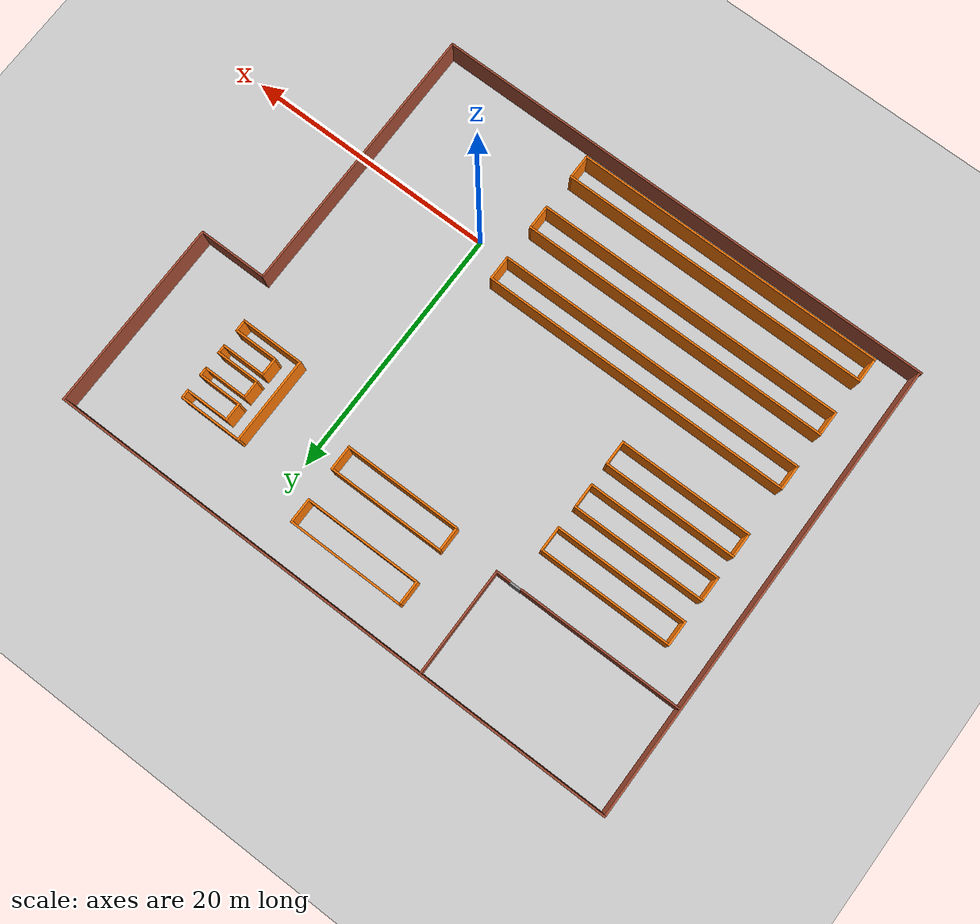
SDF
<sdf version="1.6">
 <world name="default">
  <light name="sun" type="directional">
   <pose>0 0 10 0 -0 0</pose>
   <diffuse>0.8 0.8 0.8 1</diffuse>
   <specular>0.2 0.2 0.2 1</specular>
   <attenuation>
    <range>1000</range>
    <constant>0.9</constant>
    <linear>0.01</linear>
    <quadratic>0.001</quadratic>
   </attenuation>
   <direction>-0.5 0.1 -0.9</direction>
  </light>
  <model name="ground_plane">
   <static>1</static>
   <link name="link">
    <collision name="collision">
     <geometry><plane><normal>0 0 1</normal><size>100 100</size></plane></geometry>
     <surface>
      <contact><collide_bitmask>65535</collide_bitmask></contact>
      <friction><ode><mu>100</mu><mu2>50</mu2></ode></friction>
     </surface>
    </collision>
    <visual name="visual">
     <cast_shadows>0</cast_shadows>
     <geometry><plane><normal>0 0 1</normal><size>100 100</size></plane></geometry>
     <material>
      <script><uri>file://media/materials/scripts/gazebo.material</uri><name>Gazebo/Grey</name></script>
     </material>
    </visual>
   </link>
  </model>
  <gravity>0 0 -9.8</gravity>
  <magnetic_field>6e-06 2.3e-05 -4.2e-05</magnetic_field>
  <atmosphere type="adiabatic"/>
  <physics name="default_physics" default="0" type="ode">
   <max_step_size>0.001</max_step_size>
   <real_time_factor>1</real_time_factor>
   <real_time_update_rate>1000</real_time_update_rate>
  </physics>
  <scene><ambient>0.4 0.4 0.4 1</ambient><background>0.7 0.7 0.7 1</background><shadows>1</shadows></scene>
  <audio><device>default</device></audio>
  <spherical_coordinates>
   <surface_model>EARTH_WGS84</surface_model>
   <latitude_deg>0</latitude_deg>
   <longitude_deg>0</longitude_deg>
   <elevation>0</elevation>
   <heading_deg>0</heading_deg>
  </spherical_coordinates>
  <model name="si_amr_factory">
   <pose>-7.31107 8.19607 0 0 -0 0</pose>
   <link name="Door_0">
    <collision name="Door_0_Collision">
     <geometry><box><size>0.9 0.17 2</size></box></geometry>
     <pose>0 0 1 0 -0 0</pose>
    </collision>
    <visual name="Door_0_Visual">
     <pose>0 0 1 0 -0 0</pose>
     <geometry><box><size>0.9 0.17 2</size></box></geometry>
     <material>
      <script><uri>file://media/materials/scripts/gazebo.material</uri><name>Gazebo/Grey</name></script>
     </material>
    </visual>
    <pose>-9.26953 9.88213 0 0 -0 0</pose>
   </link>
   <link name="Wall_11">
    <collision name="Wall_11_Collision">
     <geometry><box><size>40.25 0.15 2.5</size></box></geometry>
     <pose>0 0 1.25 0 -0 0</pose>
    </collision>
    <visual name="Wall_11_Visual">
     <pose>0 0 1.25 0 -0 0</pose>
     <geometry><box><size>40.25 0.15 2.5</size></box></geometry>
     <material>
      <script><uri>file://media/materials/scripts/gazebo.material</uri><name>Gazebo/Bricks</name></script>
      <ambient>1 1 1 1</ambient>
     </material>
     <meta><layer>0</layer></meta>
    </visual>
    <pose>-2.675 -18.228 0 0 -0 0</pose>
   </link>
   <link name="Wall_12">
    <collision name="Wall_12_Collision">
     <geometry><box><size>21.75 0.15 2.5</size></box></geometry>
     <pose>0 0 1.25 0 -0 0</pose>
    </collision>
    <visual name="Wall_12_Visual">
     <pose>0 0 1.25 0 -0 0</pose>
     <geometry><box><size>21.75 0.15 2.5</size></box></geometry>
     <material>
      <script><uri>file://media/materials/scripts/gazebo.material</uri><name>Gazebo/Bricks</name></script>
      <ambient>1 1 1 1</ambient>
     </material>
     <meta><layer>0</layer></meta>
    </visual>
    <pose>17.375 -7.42803 0 0 -0 1.5708</pose>
   </link>
   <link name="Wall_13">
    <collision name="Wall_13_Collision">
     <geometry><box><size>5.5 0.15 2.5</size></box></geometry>
     <pose>0 0 1.25 0 -0 0</pose>
    </collision>
    <visual name="Wall_13_Visual">
     <pose>0 0 1.25 0 -0 0</pose>
     <geometry><box><size>5.5 0.15 2.5</size></box></geometry>
     <material>
      <script><uri>file://media/materials/scripts/gazebo.material</uri><name>Gazebo/Bricks</name></script>
      <ambient>1 1 1 1</ambient>
     </material>
     <meta><layer>0</layer></meta>
    </visual>
    <pose>20.05 3.37197 0 0 -0 0</pose>
   </link>
   <link name="Wall_14">
    <collision name="Wall_14_Collision">
     <geometry><box><size>15 0.15 2.5</size></box></geometry>
     <pose>0 0 1.25 0 -0 0</pose>
    </collision>
    <visual name="Wall_14_Visual">
     <pose>0 0 1.25 0 -0 0</pose>
     <geometry><box><size>15 0.15 2.5</size></box></geometry>
     <material>
      <script><uri>file://media/materials/scripts/gazebo.material</uri><name>Gazebo/Bricks</name></script>
      <ambient>1 1 1 1</ambient>
     </material>
     <meta><layer>0</layer></meta>
    </visual>
    <pose>22.725 10.797 0 0 -0 1.5708</pose>
   </link>
   <link name="Wall_15">
    <collision name="Wall_15_Collision">
     <geometry><box><size>45.5 0.15 2.5</size></box></geometry>
     <pose>0 0 1.25 0 -0 0</pose>
    </collision>
    <visual name="Wall_15_Visual">
     <pose>0 0 1.25 0 -0 0</pose>
     <geometry><box><size>45.5 0.15 2.5</size></box></geometry>
     <material>
      <script><uri>file://media/materials/scripts/gazebo.material</uri><name>Gazebo/Bricks</name></script>
      <ambient>1 1 1 1</ambient>
     </material>
     <meta><layer>0</layer></meta>
    </visual>
    <pose>0.05 18.222 0 0 -0 3.14159</pose>
   </link>
   <link name="Wall_16">
    <collision name="Wall_16_Collision">
     <geometry><box><size>36.5 0.15 2.5</size></box></geometry>
     <pose>0 0 1.25 0 -0 0</pose>
    </collision>
    <visual name="Wall_16_Visual">
     <pose>0 0 1.25 0 -0 0</pose>
     <geometry><box><size>36.5 0.15 2.5</size></box></geometry>
     <material>
      <script><uri>file://media/materials/scripts/gazebo.material</uri><name>Gazebo/Bricks</name></script>
      <ambient>1 1 1 1</ambient>
     </material>
     <meta><layer>0</layer></meta>
    </visual>
    <pose>-22.625 0.046968 0 0 -0 -1.5708</pose>
   </link>
   <link name="Wall_18">
    <collision name="Wall_18_Collision">
     <geometry><box><size>24.5 0.15 2.5</size></box></geometry>
     <pose>0 0 1.25 0 -0 0</pose>
    </collision>
    <visual name="Wall_18_Visual">
     <pose>0 0 1.25 0 -0 0</pose>
     <geometry><box><size>24.5 0.15 2.5</size></box></geometry>
     <material>
      <script><uri>file://media/materials/scripts/gazebo.material</uri><name>Gazebo/Grey</name></script>
      <ambient>0.996078 0.47451 0.0196078 1</ambient>
     </material>
     <meta><layer>0</layer></meta>
    </visual>
    <pose>-7.49549 -17.1298 0 0 -0 0</pose>
   </link>
   <link name="Wall_19">
    <collision name="Wall_19_Collision">
     <geometry><box><size>2 0.15 2.5</size></box></geometry>
     <pose>0 0 1.25 0 -0 0</pose>
    </collision>
    <visual name="Wall_19_Visual">
     <pose>0 0 1.25 0 -0 0</pose>
     <geometry><box><size>2 0.15 2.5</size></box></geometry>
     <material>
      <script><uri>file://media/materials/scripts/gazebo.material</uri><name>Gazebo/Grey</name></script>
      <ambient>0.996078 0.47451 0.0196078 1</ambient>
     </material>
     <meta><layer>0</layer></meta>
    </visual>
    <pose>4.67951 -16.2048 0 0 -0 1.5708</pose>
   </link>
   <link name="Wall_23">
    <collision name="Wall_23_Collision">
     <geometry><box><size>24.5 0.15 2.5</size></box></geometry>
     <pose>0 0 1.25 0 -0 0</pose>
    </collision>
    <visual name="Wall_23_Visual">
     <pose>0 0 1.25 0 -0 0</pose>
     <geometry><box><size>24.5 0.15 2.5</size></box></geometry>
     <material>
      <script><uri>file://media/materials/scripts/gazebo.material</uri><name>Gazebo/Grey</name></script>
      <ambient>0.996078 0.47451 0.0196078 1</ambient>
     </material>
     <meta><layer>0</layer></meta>
    </visual>
    <pose>-7.49549 -15.2798 0 0 -0 3.14159</pose>
   </link>
   <link name="Wall_24">
    <collision name="Wall_24_Collision">
     <geometry><box><size>2 0.15 2.5</size></box></geometry>
     <pose>0 0 1.25 0 -0 0</pose>
    </collision>
    <visual name="Wall_24_Visual">
     <pose>0 0 1.25 0 -0 0</pose>
     <geometry><box><size>2 0.15 2.5</size></box></geometry>
     <material>
      <script><uri>file://media/materials/scripts/gazebo.material</uri><name>Gazebo/Grey</name></script>
      <ambient>0.996078 0.47451 0.0196078 1</ambient>
     </material>
     <meta><layer>0</layer></meta>
    </visual>
    <pose>-19.6705 -16.2048 0 0 -0 -1.5708</pose>
   </link>
   <link name="Wall_26">
    <collision name="Wall_26_Collision">
     <geometry><box><size>24.5 0.15 2.5</size></box></geometry>
     <pose>0 0 1.25 0 -0 0</pose>
    </collision>
    <visual name="Wall_26_Visual">
     <pose>0 0 1.25 0 -0 0</pose>
     <geometry><box><size>24.5 0.15 2.5</size></box></geometry>
     <material>
      <script><uri>file://media/materials/scripts/gazebo.material</uri><name>Gazebo/Grey</name></script>
      <ambient>0.996078 0.47451 0.0196078 1</ambient>
     </material>
     <meta><layer>0</layer></meta>
    </visual>
    <pose>-7.44652 -12.4509 0 0 -0 0</pose>
   </link>
   <link name="Wall_27">
    <collision name="Wall_27_Collision">
     <geometry><box><size>2 0.15 2.5</size></box></geometry>
     <pose>0 0 1.25 0 -0 0</pose>
    </collision>
    <visual name="Wall_27_Visual">
     <pose>0 0 1.25 0 -0 0</pose>
     <geometry><box><size>2 0.15 2.5</size></box></geometry>
     <material>
      <script><uri>file://media/materials/scripts/gazebo.material</uri><name>Gazebo/Grey</name></script>
      <ambient>0.996078 0.47451 0.0196078 1</ambient>
     </material>
     <meta><layer>0</layer></meta>
    </visual>
    <pose>4.72848 -11.5259 0 0 -0 1.5708</pose>
   </link>
   <link name="Wall_28">
    <collision name="Wall_28_Collision">
     <geometry><box><size>24.5 0.15 2.5</size></box></geometry>
     <pose>0 0 1.25 0 -0 0</pose>
    </collision>
    <visual name="Wall_28_Visual">
     <pose>0 0 1.25 0 -0 0</pose>
     <geometry><box><size>24.5 0.15 2.5</size></box></geometry>
     <material>
      <script><uri>file://media/materials/scripts/gazebo.material</uri><name>Gazebo/Grey</name></script>
      <ambient>0.996078 0.47451 0.0196078 1</ambient>
     </material>
     <meta><layer>0</layer></meta>
    </visual>
    <pose>-7.44652 -10.6009 0 0 -0 3.14159</pose>
   </link>
   <link name="Wall_29">
    <collision name="Wall_29_Collision">
     <geometry><box><size>2 0.15 2.5</size></box></geometry>
     <pose>0 0 1.25 0 -0 0</pose>
    </collision>
    <visual name="Wall_29_Visual">
     <pose>0 0 1.25 0 -0 0</pose>
     <geometry><box><size>2 0.15 2.5</size></box></geometry>
     <material>
      <script><uri>file://media/materials/scripts/gazebo.material</uri><name>Gazebo/Grey</name></script>
      <ambient>0.996078 0.47451 0.0196078 1</ambient>
     </material>
     <meta><layer>0</layer></meta>
    </visual>
    <pose>-19.6215 -11.5259 0 0 -0 -1.5708</pose>
   </link>
   <link name="Wall_31">
    <collision name="Wall_31_Collision">
     <geometry><box><size>24.5 0.15 2.5</size></box></geometry>
     <pose>0 0 1.25 0 -0 0</pose>
    </collision>
    <visual name="Wall_31_Visual">
     <pose>0 0 1.25 0 -0 0</pose>
     <geometry><box><size>24.5 0.15 2.5</size></box></geometry>
     <material>
      <script><uri>file://media/materials/scripts/gazebo.material</uri><name>Gazebo/Grey</name></script>
      <ambient>0.996078 0.47451 0.0196078 1</ambient>
     </material>
     <meta><layer>0</layer></meta>
    </visual>
    <pose>-7.46965 -7.87105 0 0 -0 0</pose>
   </link>
   <link name="Wall_32">
    <collision name="Wall_32_Collision">
     <geometry><box><size>2 0.15 2.5</size></box></geometry>
     <pose>0 0 1.25 0 -0 0</pose>
    </collision>
    <visual name="Wall_32_Visual">
     <pose>0 0 1.25 0 -0 0</pose>
     <geometry><box><size>2 0.15 2.5</size></box></geometry>
     <material>
      <script><uri>file://media/materials/scripts/gazebo.material</uri><name>Gazebo/Grey</name></script>
      <ambient>0.996078 0.47451 0.0196078 1</ambient>
     </material>
     <meta><layer>0</layer></meta>
    </visual>
    <pose>4.70535 -6.94605 0 0 -0 1.5708</pose>
   </link>
   <link name="Wall_33">
    <collision name="Wall_33_Collision">
     <geometry><box><size>24.5 0.15 2.5</size></box></geometry>
     <pose>0 0 1.25 0 -0 0</pose>
    </collision>
    <visual name="Wall_33_Visual">
     <pose>0 0 1.25 0 -0 0</pose>
     <geometry><box><size>24.5 0.15 2.5</size></box></geometry>
     <material>
      <script><uri>file://media/materials/scripts/gazebo.material</uri><name>Gazebo/Grey</name></script>
      <ambient>0.996078 0.47451 0.0196078 1</ambient>
     </material>
     <meta><layer>0</layer></meta>
    </visual>
    <pose>-7.46965 -6.02105 0 0 -0 3.14159</pose>
   </link>
   <link name="Wall_34">
    <collision name="Wall_34_Collision">
     <geometry><box><size>2 0.15 2.5</size></box></geometry>
     <pose>0 0 1.25 0 -0 0</pose>
    </collision>
    <visual name="Wall_34_Visual">
     <pose>0 0 1.25 0 -0 0</pose>
     <geometry><box><size>2 0.15 2.5</size></box></geometry>
     <material>
      <script><uri>file://media/materials/scripts/gazebo.material</uri><name>Gazebo/Grey</name></script>
      <ambient>0.996078 0.47451 0.0196078 1</ambient>
     </material>
     <meta><layer>0</layer></meta>
    </visual>
    <pose>-19.6446 -6.94605 0 0 -0 -1.5708</pose>
   </link>
   <link name="Wall_36">
    <collision name="Wall_36_Collision">
     <geometry><box><size>10.5 0.15 2.5</size></box></geometry>
     <pose>0 0 1.25 0 -0 0</pose>
    </collision>
    <visual name="Wall_36_Visual">
     <pose>0 0 1.25 0 -0 0</pose>
     <geometry><box><size>10.5 0.15 2.5</size></box></geometry>
     <material>
      <script><uri>file://media/materials/scripts/gazebo.material</uri><name>Gazebo/Grey</name></script>
      <ambient>0.996078 0.47451 0.0196078 1</ambient>
     </material>
     <meta><layer>0</layer></meta>
    </visual>
    <pose>-14.4928 1.42746 0 0 -0 0</pose>
   </link>
   <link name="Wall_37">
    <collision name="Wall_37_Collision">
     <geometry><box><size>2 0.15 2.5</size></box></geometry>
     <pose>0 0 1.25 0 -0 0</pose>
    </collision>
    <visual name="Wall_37_Visual">
     <pose>0 0 1.25 0 -0 0</pose>
     <geometry><box><size>2 0.15 2.5</size></box></geometry>
     <material>
      <script><uri>file://media/materials/scripts/gazebo.material</uri><name>Gazebo/Grey</name></script>
      <ambient>0.996078 0.47451 0.0196078 1</ambient>
     </material>
     <meta><layer>0</layer></meta>
    </visual>
    <pose>-9.31778 2.35246 0 0 -0 1.5708</pose>
   </link>
   <link name="Wall_38">
    <collision name="Wall_38_Collision">
     <geometry><box><size>10.5 0.15 2.5</size></box></geometry>
     <pose>0 0 1.25 0 -0 0</pose>
    </collision>
    <visual name="Wall_38_Visual">
     <pose>0 0 1.25 0 -0 0</pose>
     <geometry><box><size>10.5 0.15 2.5</size></box></geometry>
     <material>
      <script><uri>file://media/materials/scripts/gazebo.material</uri><name>Gazebo/Grey</name></script>
      <ambient>0.996078 0.47451 0.0196078 1</ambient>
     </material>
     <meta><layer>0</layer></meta>
    </visual>
    <pose>-14.4928 3.27746 0 0 -0 3.14159</pose>
   </link>
   <link name="Wall_39">
    <collision name="Wall_39_Collision">
     <geometry><box><size>2 0.15 2.5</size></box></geometry>
     <pose>0 0 1.25 0 -0 0</pose>
    </collision>
    <visual name="Wall_39_Visual">
     <pose>0 0 1.25 0 -0 0</pose>
     <geometry><box><size>2 0.15 2.5</size></box></geometry>
     <material>
      <script><uri>file://media/materials/scripts/gazebo.material</uri><name>Gazebo/Grey</name></script>
      <ambient>0.996078 0.47451 0.0196078 1</ambient>
     </material>
     <meta><layer>0</layer></meta>
    </visual>
    <pose>-19.6678 2.35246 0 0 -0 -1.5708</pose>
   </link>
   <link name="Wall_42">
    <collision name="Wall_42_Collision">
     <geometry><box><size>10.5 0.15 2.5</size></box></geometry>
     <pose>0 0 1.25 0 -0 0</pose>
    </collision>
    <visual name="Wall_42_Visual">
     <pose>0 0 1.25 0 -0 0</pose>
     <geometry><box><size>10.5 0.15 2.5</size></box></geometry>
     <material>
      <script><uri>file://media/materials/scripts/gazebo.material</uri><name>Gazebo/Grey</name></script>
      <ambient>0.996078 0.47451 0.0196078 1</ambient>
     </material>
     <meta><layer>0</layer></meta>
    </visual>
    <pose>-14.4696 -2.18092 0 0 -0 0</pose>
   </link>
   <link name="Wall_43">
    <collision name="Wall_43_Collision">
     <geometry><box><size>2 0.15 2.5</size></box></geometry>
     <pose>0 0 1.25 0 -0 0</pose>
    </collision>
    <visual name="Wall_43_Visual">
     <pose>0 0 1.25 0 -0 0</pose>
     <geometry><box><size>2 0.15 2.5</size></box></geometry>
     <material>
      <script><uri>file://media/materials/scripts/gazebo.material</uri><name>Gazebo/Grey</name></script>
      <ambient>0.996078 0.47451 0.0196078 1</ambient>
     </material>
     <meta><layer>0</layer></meta>
    </visual>
    <pose>-9.29465 -1.25592 0 0 -0 1.5708</pose>
   </link>
   <link name="Wall_44">
    <collision name="Wall_44_Collision">
     <geometry><box><size>10.5 0.15 2.5</size></box></geometry>
     <pose>0 0 1.25 0 -0 0</pose>
    </collision>
    <visual name="Wall_44_Visual">
     <pose>0 0 1.25 0 -0 0</pose>
     <geometry><box><size>10.5 0.15 2.5</size></box></geometry>
     <material>
      <script><uri>file://media/materials/scripts/gazebo.material</uri><name>Gazebo/Grey</name></script>
      <ambient>0.996078 0.47451 0.0196078 1</ambient>
     </material>
     <meta><layer>0</layer></meta>
    </visual>
    <pose>-14.4696 -0.330918 0 0 -0 3.14159</pose>
   </link>
   <link name="Wall_45">
    <collision name="Wall_45_Collision">
     <geometry><box><size>2 0.15 2.5</size></box></geometry>
     <pose>0 0 1.25 0 -0 0</pose>
    </collision>
    <visual name="Wall_45_Visual">
     <pose>0 0 1.25 0 -0 0</pose>
     <geometry><box><size>2 0.15 2.5</size></box></geometry>
     <material>
      <script><uri>file://media/materials/scripts/gazebo.material</uri><name>Gazebo/Grey</name></script>
      <ambient>0.996078 0.47451 0.0196078 1</ambient>
     </material>
     <meta><layer>0</layer></meta>
    </visual>
    <pose>-19.6446 -1.25592 0 0 -0 -1.5708</pose>
   </link>
   <link name="Wall_48">
    <collision name="Wall_48_Collision">
     <geometry><box><size>10.5 0.15 2.5</size></box></geometry>
     <pose>0 0 1.25 0 -0 0</pose>
    </collision>
    <visual name="Wall_48_Visual">
     <pose>0 0 1.25 0 -0 0</pose>
     <geometry><box><size>10.5 0.15 2.5</size></box></geometry>
     <material>
      <script><uri>file://media/materials/scripts/gazebo.material</uri><name>Gazebo/Grey</name></script>
      <ambient>0.996078 0.47451 0.0196078 1</ambient>
     </material>
     <meta><layer>0</layer></meta>
    </visual>
    <pose>-14.4234 5.08209 0 0 -0 0</pose>
   </link>
   <link name="Wall_49">
    <collision name="Wall_49_Collision">
     <geometry><box><size>2 0.15 2.5</size></box></geometry>
     <pose>0 0 1.25 0 -0 0</pose>
    </collision>
    <visual name="Wall_49_Visual">
     <pose>0 0 1.25 0 -0 0</pose>
     <geometry><box><size>2 0.15 2.5</size></box></geometry>
     <material>
      <script><uri>file://media/materials/scripts/gazebo.material</uri><name>Gazebo/Grey</name></script>
      <ambient>0.996078 0.47451 0.0196078 1</ambient>
     </material>
     <meta><layer>0</layer></meta>
    </visual>
    <pose>-9.24839 6.00709 0 0 -0 1.5708</pose>
   </link>
   <link name="Wall_50">
    <collision name="Wall_50_Collision">
     <geometry><box><size>10.5 0.15 2.5</size></box></geometry>
     <pose>0 0 1.25 0 -0 0</pose>
    </collision>
    <visual name="Wall_50_Visual">
     <pose>0 0 1.25 0 -0 0</pose>
     <geometry><box><size>10.5 0.15 2.5</size></box></geometry>
     <material>
      <script><uri>file://media/materials/scripts/gazebo.material</uri><name>Gazebo/Grey</name></script>
      <ambient>0.996078 0.47451 0.0196078 1</ambient>
     </material>
     <meta><layer>0</layer></meta>
    </visual>
    <pose>-14.4234 6.93209 0 0 -0 3.14159</pose>
   </link>
   <link name="Wall_51">
    <collision name="Wall_51_Collision">
     <geometry><box><size>2 0.15 2.5</size></box></geometry>
     <pose>0 0 1.25 0 -0 0</pose>
    </collision>
    <visual name="Wall_51_Visual">
     <pose>0 0 1.25 0 -0 0</pose>
     <geometry><box><size>2 0.15 2.5</size></box></geometry>
     <material>
      <script><uri>file://media/materials/scripts/gazebo.material</uri><name>Gazebo/Grey</name></script>
      <ambient>0.996078 0.47451 0.0196078 1</ambient>
     </material>
     <meta><layer>0</layer></meta>
    </visual>
    <pose>-19.5984 6.00709 0 0 -0 -1.5708</pose>
   </link>
   <link name="Wall_53">
    <collision name="Wall_53_Collision">
     <geometry><box><size>9.25 0.15 2.5</size></box></geometry>
     <pose>0 0 1.25 0 -0 0</pose>
    </collision>
    <visual name="Wall_53_Visual">
     <pose>0 0 1.25 0 -0 0</pose>
     <geometry><box><size>9.25 0.15 2.5</size></box></geometry>
     <material>
      <script><uri>file://media/materials/scripts/gazebo.material</uri><name>Gazebo/Grey</name></script>
      <ambient>0.996078 0.47451 0.0196078 1</ambient>
     </material>
     <meta><layer>0</layer></meta>
    </visual>
    <pose>0.64642 13.6054 0 0 -0 0</pose>
   </link>
   <link name="Wall_54">
    <collision name="Wall_54_Collision">
     <geometry><box><size>2 0.15 2.5</size></box></geometry>
     <pose>0 0 1.25 0 -0 0</pose>
    </collision>
    <visual name="Wall_54_Visual">
     <pose>0 0 1.25 0 -0 0</pose>
     <geometry><box><size>2 0.15 2.5</size></box></geometry>
     <material>
      <script><uri>file://media/materials/scripts/gazebo.material</uri><name>Gazebo/Grey</name></script>
      <ambient>0.996078 0.47451 0.0196078 1</ambient>
     </material>
     <meta><layer>0</layer></meta>
    </visual>
    <pose>5.19642 14.5304 0 0 -0 1.5708</pose>
   </link>
   <link name="Wall_55">
    <collision name="Wall_55_Collision">
     <geometry><box><size>9.25 0.15 2.5</size></box></geometry>
     <pose>0 0 1.25 0 -0 0</pose>
    </collision>
    <visual name="Wall_55_Visual">
     <pose>0 0 1.25 0 -0 0</pose>
     <geometry><box><size>9.25 0.15 2.5</size></box></geometry>
     <material>
      <script><uri>file://media/materials/scripts/gazebo.material</uri><name>Gazebo/Grey</name></script>
      <ambient>0.996078 0.47451 0.0196078 1</ambient>
     </material>
     <meta><layer>0</layer></meta>
    </visual>
    <pose>0.64642 15.4554 0 0 -0 3.14159</pose>
   </link>
   <link name="Wall_56">
    <collision name="Wall_56_Collision">
     <geometry><box><size>2 0.15 2.5</size></box></geometry>
     <pose>0 0 1.25 0 -0 0</pose>
    </collision>
    <visual name="Wall_56_Visual">
     <pose>0 0 1.25 0 -0 0</pose>
     <geometry><box><size>2 0.15 2.5</size></box></geometry>
     <material>
      <script><uri>file://media/materials/scripts/gazebo.material</uri><name>Gazebo/Grey</name></script>
      <ambient>0.996078 0.47451 0.0196078 1</ambient>
     </material>
     <meta><layer>0</layer></meta>
    </visual>
    <pose>-3.90358 14.5304 0 0 -0 -1.5708</pose>
   </link>
   <link name="Wall_58">
    <collision name="Wall_58_Collision">
     <geometry><box><size>9.25 0.15 2.5</size></box></geometry>
     <pose>0 0 1.25 0 -0 0</pose>
    </collision>
    <visual name="Wall_58_Visual">
     <pose>0 0 1.25 0 -0 0</pose>
     <geometry><box><size>9.25 0.15 2.5</size></box></geometry>
     <material>
      <script><uri>file://media/materials/scripts/gazebo.material</uri><name>Gazebo/Grey</name></script>
      <ambient>0.996078 0.47451 0.0196078 1</ambient>
     </material>
     <meta><layer>0</layer></meta>
    </visual>
    <pose>0.69889 9.1804 0 0 -0 0</pose>
   </link>
   <link name="Wall_59">
    <collision name="Wall_59_Collision">
     <geometry><box><size>2 0.15 2.5</size></box></geometry>
     <pose>0 0 1.25 0 -0 0</pose>
    </collision>
    <visual name="Wall_59_Visual">
     <pose>0 0 1.25 0 -0 0</pose>
     <geometry><box><size>2 0.15 2.5</size></box></geometry>
     <material>
      <script><uri>file://media/materials/scripts/gazebo.material</uri><name>Gazebo/Grey</name></script>
      <ambient>0.996078 0.47451 0.0196078 1</ambient>
     </material>
     <meta><layer>0</layer></meta>
    </visual>
    <pose>5.24889 10.1054 0 0 -0 1.5708</pose>
   </link>
   <link name="Wall_60">
    <collision name="Wall_60_Collision">
     <geometry><box><size>9.25 0.15 2.5</size></box></geometry>
     <pose>0 0 1.25 0 -0 0</pose>
    </collision>
    <visual name="Wall_60_Visual">
     <pose>0 0 1.25 0 -0 0</pose>
     <geometry><box><size>9.25 0.15 2.5</size></box></geometry>
     <material>
      <script><uri>file://media/materials/scripts/gazebo.material</uri><name>Gazebo/Grey</name></script>
      <ambient>0.996078 0.47451 0.0196078 1</ambient>
     </material>
     <meta><layer>0</layer></meta>
    </visual>
    <pose>0.69889 11.0304 0 0 -0 3.14159</pose>
   </link>
   <link name="Wall_61">
    <collision name="Wall_61_Collision">
     <geometry><box><size>2 0.15 2.5</size></box></geometry>
     <pose>0 0 1.25 0 -0 0</pose>
    </collision>
    <visual name="Wall_61_Visual">
     <pose>0 0 1.25 0 -0 0</pose>
     <geometry><box><size>2 0.15 2.5</size></box></geometry>
     <material>
      <script><uri>file://media/materials/scripts/gazebo.material</uri><name>Gazebo/Grey</name></script>
      <ambient>0.996078 0.47451 0.0196078 1</ambient>
     </material>
     <meta><layer>0</layer></meta>
    </visual>
    <pose>-3.85111 10.1054 0 0 -0 -1.5708</pose>
   </link>
   <link name="Wall_63">
    <collision name="Wall_63_Collision">
     <geometry><box><size>13 0.15 2.5</size></box></geometry>
     <pose>0 0 1.25 0 -0 0</pose>
    </collision>
    <visual name="Wall_63_Visual">
     <pose>0 0 1.25 0 -0 0</pose>
     <geometry><box><size>13 0.15 2.5</size></box></geometry>
     <material>
      <script><uri>file://media/materials/scripts/gazebo.material</uri><name>Gazebo/Bricks</name></script>
      <ambient>1 1 1 1</ambient>
     </material>
     <meta><layer>0</layer></meta>
    </visual>
    <pose>-16.1712 9.85553 0 0 -0 0</pose>
   </link>
   <link name="Wall_65">
    <collision name="Wall_65_Collision">
     <geometry><box><size>1.25 0.15 2.5</size></box></geometry>
     <pose>0 0 1.25 0 -0 0</pose>
    </collision>
    <visual name="Wall_65_Visual">
     <pose>0 0 1.25 0 -0 0</pose>
     <geometry><box><size>1.25 0.15 2.5</size></box></geometry>
     <material>
      <script><uri>file://media/materials/scripts/gazebo.material</uri><name>Gazebo/Bricks</name></script>
      <ambient>1 1 1 1</ambient>
     </material>
     <meta><layer>0</layer></meta>
    </visual>
    <pose>-8.25796 9.87803 0 0 -0 0</pose>
   </link>
   <link name="Wall_67">
    <collision name="Wall_67_Collision">
     <geometry><box><size>8.5 0.15 2.5</size></box></geometry>
     <pose>0 0 1.25 0 -0 0</pose>
    </collision>
    <visual name="Wall_67_Visual">
     <pose>0 0 1.25 0 -0 0</pose>
     <geometry><box><size>8.5 0.15 2.5</size></box></geometry>
     <material>
      <script><uri>file://media/materials/scripts/gazebo.material</uri><name>Gazebo/Bricks</name></script>
      <ambient>1 1 1 1</ambient>
     </material>
     <meta><layer>0</layer></meta>
    </visual>
    <pose>-7.70795 14.053 0 0 -0 1.5708</pose>
   </link>
   <link name="Wall_69">
    <collision name="Wall_69_Collision">
     <geometry><box><size>5 0.15 2.5</size></box></geometry>
     <pose>0 0 1.25 0 -0 0</pose>
    </collision>
    <visual name="Wall_69_Visual">
     <pose>0 0 1.25 0 -0 0</pose>
     <geometry><box><size>5 0.15 2.5</size></box></geometry>
     <material>
      <script><uri>file://media/materials/scripts/gazebo.material</uri><name>Gazebo/Grey</name></script>
      <ambient>0.996078 0.47451 0.0196078 1</ambient>
     </material>
     <meta><layer>0</layer></meta>
    </visual>
    <pose>13.9592 6.58835 0 0 -0 0</pose>
   </link>
   <link name="Wall_70">
    <collision name="Wall_70_Collision">
     <geometry><box><size>1 0.15 2.5</size></box></geometry>
     <pose>0 0 1.25 0 -0 0</pose>
    </collision>
    <visual name="Wall_70_Visual">
     <pose>0 0 1.25 0 -0 0</pose>
     <geometry><box><size>1 0.15 2.5</size></box></geometry>
     <material>
      <script><uri>file://media/materials/scripts/gazebo.material</uri><name>Gazebo/Grey</name></script>
      <ambient>0.996078 0.47451 0.0196078 1</ambient>
     </material>
     <meta><layer>0</layer></meta>
    </visual>
    <pose>16.3842 7.01335 0 0 -0 1.5708</pose>
   </link>
   <link name="Wall_71">
    <collision name="Wall_71_Collision">
     <geometry><box><size>3.5 0.15 2.5</size></box></geometry>
     <pose>0 0 1.25 0 -0 0</pose>
    </collision>
    <visual name="Wall_71_Visual">
     <pose>0 0 1.25 0 -0 0</pose>
     <geometry><box><size>3.5 0.15 2.5</size></box></geometry>
     <material>
      <script><uri>file://media/materials/scripts/gazebo.material</uri><name>Gazebo/Grey</name></script>
      <ambient>0.996078 0.47451 0.0196078 1</ambient>
     </material>
     <meta><layer>0</layer></meta>
    </visual>
    <pose>14.7092 7.43835 0 0 -0 3.14159</pose>
   </link>
   <link name="Wall_73">
    <collision name="Wall_73_Collision">
     <geometry><box><size>1.5 0.15 2.5</size></box></geometry>
     <pose>0 0 1.25 0 -0 0</pose>
    </collision>
    <visual name="Wall_73_Visual">
     <pose>0 0 1.25 0 -0 0</pose>
     <geometry><box><size>1.5 0.15 2.5</size></box></geometry>
     <material>
      <script><uri>file://media/materials/scripts/gazebo.material</uri><name>Gazebo/Grey</name></script>
      <ambient>0.996078 0.47451 0.0196078 1</ambient>
     </material>
     <meta><layer>0</layer></meta>
    </visual>
    <pose>13.0342 8.11335 0 0 -0 1.5708</pose>
   </link>
   <link name="Wall_74">
    <collision name="Wall_74_Collision">
     <geometry><box><size>3.5 0.15 2.5</size></box></geometry>
     <pose>0 0 1.25 0 -0 0</pose>
    </collision>
    <visual name="Wall_74_Visual">
     <pose>0 0 1.25 0 -0 0</pose>
     <geometry><box><size>3.5 0.15 2.5</size></box></geometry>
     <material>
      <script><uri>file://media/materials/scripts/gazebo.material</uri><name>Gazebo/Grey</name></script>
      <ambient>0.996078 0.47451 0.0196078 1</ambient>
     </material>
     <meta><layer>0</layer></meta>
    </visual>
    <pose>14.7092 8.78835 0 0 -0 0</pose>
   </link>
   <link name="Wall_75">
    <collision name="Wall_75_Collision">
     <geometry><box><size>0.75 0.15 2.5</size></box></geometry>
     <pose>0 0 1.25 0 -0 0</pose>
    </collision>
    <visual name="Wall_75_Visual">
     <pose>0 0 1.25 0 -0 0</pose>
     <geometry><box><size>0.75 0.15 2.5</size></box></geometry>
     <material>
      <script><uri>file://media/materials/scripts/gazebo.material</uri><name>Gazebo/Grey</name></script>
      <ambient>0.996078 0.47451 0.0196078 1</ambient>
     </material>
     <meta><layer>0</layer></meta>
    </visual>
    <pose>16.3842 9.08835 0 0 -0 1.5708</pose>
   </link>
   <link name="Wall_76">
    <collision name="Wall_76_Collision">
     <geometry><box><size>3.5 0.15 2.5</size></box></geometry>
     <pose>0 0 1.25 0 -0 0</pose>
    </collision>
    <visual name="Wall_76_Visual">
     <pose>0 0 1.25 0 -0 0</pose>
     <geometry><box><size>3.5 0.15 2.5</size></box></geometry>
     <material>
      <script><uri>file://media/materials/scripts/gazebo.material</uri><name>Gazebo/Grey</name></script>
      <ambient>0.996078 0.47451 0.0196078 1</ambient>
     </material>
     <meta><layer>0</layer></meta>
    </visual>
    <pose>14.7092 9.38835 0 0 -0 3.14159</pose>
   </link>
   <link name="Wall_77">
    <collision name="Wall_77_Collision">
     <geometry><box><size>1.5 0.15 2.5</size></box></geometry>
     <pose>0 0 1.25 0 -0 0</pose>
    </collision>
    <visual name="Wall_77_Visual">
     <pose>0 0 1.25 0 -0 0</pose>
     <geometry><box><size>1.5 0.15 2.5</size></box></geometry>
     <material>
      <script><uri>file://media/materials/scripts/gazebo.material</uri><name>Gazebo/Grey</name></script>
      <ambient>0.996078 0.47451 0.0196078 1</ambient>
     </material>
     <meta><layer>0</layer></meta>
    </visual>
    <pose>13.0342 10.0633 0 0 -0 1.5708</pose>
   </link>
   <link name="Wall_78">
    <collision name="Wall_78_Collision">
     <geometry><box><size>3.5 0.15 2.5</size></box></geometry>
     <pose>0 0 1.25 0 -0 0</pose>
    </collision>
    <visual name="Wall_78_Visual">
     <pose>0 0 1.25 0 -0 0</pose>
     <geometry><box><size>3.5 0.15 2.5</size></box></geometry>
     <material>
      <script><uri>file://media/materials/scripts/gazebo.material</uri><name>Gazebo/Grey</name></script>
      <ambient>0.996078 0.47451 0.0196078 1</ambient>
     </material>
     <meta><layer>0</layer></meta>
    </visual>
    <pose>14.7092 10.7383 0 0 -0 0</pose>
   </link>
   <link name="Wall_79">
    <collision name="Wall_79_Collision">
     <geometry><box><size>0.75 0.15 2.5</size></box></geometry>
     <pose>0 0 1.25 0 -0 0</pose>
    </collision>
    <visual name="Wall_79_Visual">
     <pose>0 0 1.25 0 -0 0</pose>
     <geometry><box><size>0.75 0.15 2.5</size></box></geometry>
     <material>
      <script><uri>file://media/materials/scripts/gazebo.material</uri><name>Gazebo/Grey</name></script>
      <ambient>0.996078 0.47451 0.0196078 1</ambient>
     </material>
     <meta><layer>0</layer></meta>
    </visual>
    <pose>16.3842 11.0383 0 0 -0 1.5708</pose>
   </link>
   <link name="Wall_82">
    <collision name="Wall_82_Collision">
     <geometry><box><size>3.5 0.15 2.5</size></box></geometry>
     <pose>0 0 1.25 0 -0 0</pose>
    </collision>
    <visual name="Wall_82_Visual">
     <pose>0 0 1.25 0 -0 0</pose>
     <geometry><box><size>3.5 0.15 2.5</size></box></geometry>
     <material>
      <script><uri>file://media/materials/scripts/gazebo.material</uri><name>Gazebo/Grey</name></script>
      <ambient>0.996078 0.47451 0.0196078 1</ambient>
     </material>
     <meta><layer>0</layer></meta>
    </visual>
    <pose>14.7092 11.3383 0 0 -0 3.14159</pose>
   </link>
   <link name="Wall_83">
    <collision name="Wall_83_Collision">
     <geometry><box><size>1.5 0.15 2.5</size></box></geometry>
     <pose>0 0 1.25 0 -0 0</pose>
    </collision>
    <visual name="Wall_83_Visual">
     <pose>0 0 1.25 0 -0 0</pose>
     <geometry><box><size>1.5 0.15 2.5</size></box></geometry>
     <material>
      <script><uri>file://media/materials/scripts/gazebo.material</uri><name>Gazebo/Grey</name></script>
      <ambient>0.996078 0.47451 0.0196078 1</ambient>
     </material>
     <meta><layer>0</layer></meta>
    </visual>
    <pose>13.0342 12.0133 0 0 -0 1.5708</pose>
   </link>
   <link name="Wall_84">
    <collision name="Wall_84_Collision">
     <geometry><box><size>3.5 0.15 2.5</size></box></geometry>
     <pose>0 0 1.25 0 -0 0</pose>
    </collision>
    <visual name="Wall_84_Visual">
     <pose>0 0 1.25 0 -0 0</pose>
     <geometry><box><size>3.5 0.15 2.5</size></box></geometry>
     <material>
      <script><uri>file://media/materials/scripts/gazebo.material</uri><name>Gazebo/Grey</name></script>
      <ambient>0.996078 0.47451 0.0196078 1</ambient>
     </material>
     <meta><layer>0</layer></meta>
    </visual>
    <pose>14.7092 12.6883 0 0 -0 0</pose>
   </link>
   <link name="Wall_85">
    <collision name="Wall_85_Collision">
     <geometry><box><size>0.75 0.15 2.5</size></box></geometry>
     <pose>0 0 1.25 0 -0 0</pose>
    </collision>
    <visual name="Wall_85_Visual">
     <pose>0 0 1.25 0 -0 0</pose>
     <geometry><box><size>0.75 0.15 2.5</size></box></geometry>
     <material>
      <script><uri>file://media/materials/scripts/gazebo.material</uri><name>Gazebo/Grey</name></script>
      <ambient>0.996078 0.47451 0.0196078 1</ambient>
     </material>
     <meta><layer>0</layer></meta>
    </visual>
    <pose>16.3842 12.9883 0 0 -0 1.5708</pose>
   </link>
   <link name="Wall_86">
    <collision name="Wall_86_Collision">
     <geometry><box><size>5 0.15 2.5</size></box></geometry>
     <pose>0 0 1.25 0 -0 0</pose>
    </collision>
    <visual name="Wall_86_Visual">
     <pose>0 0 1.25 0 -0 0</pose>
     <geometry><box><size>5 0.15 2.5</size></box></geometry>
     <material>
      <script><uri>file://media/materials/scripts/gazebo.material</uri><name>Gazebo/Grey</name></script>
      <ambient>0.996078 0.47451 0.0196078 1</ambient>
     </material>
     <meta><layer>0</layer></meta>
    </visual>
    <pose>13.9592 13.2883 0 0 -0 3.14159</pose>
   </link>
   <link name="Wall_87">
    <collision name="Wall_87_Collision">
     <geometry><box><size>6.85 0.15 2.5</size></box></geometry>
     <pose>0 0 1.25 0 -0 0</pose>
    </collision>
    <visual name="Wall_87_Visual">
     <pose>0 0 1.25 0 -0 0</pose>
     <geometry><box><size>6.85 0.15 2.5</size></box></geometry>
     <material>
      <script><uri>file://media/materials/scripts/gazebo.material</uri><name>Gazebo/Grey</name></script>
      <ambient>0.996078 0.47451 0.0196078 1</ambient>
     </material>
     <meta><layer>0</layer></meta>
    </visual>
    <pose>11.5342 9.93835 0 0 -0 -1.5708</pose>
   </link>
   <static>1</static>
  </model>
 </world>
</sdf>
